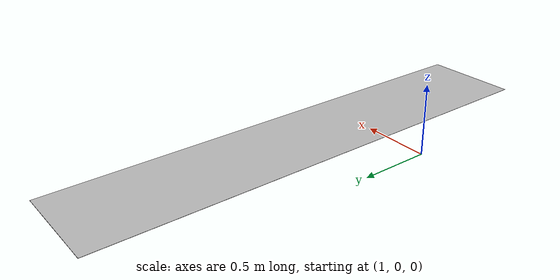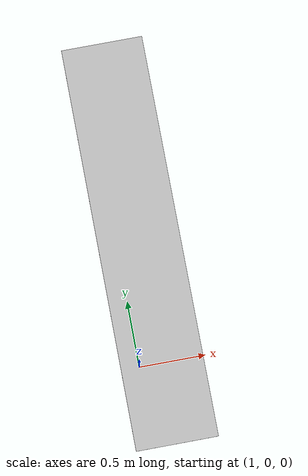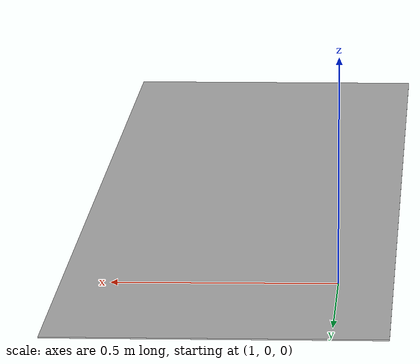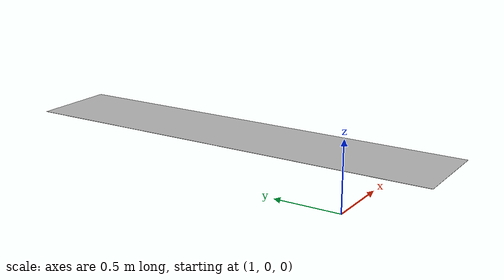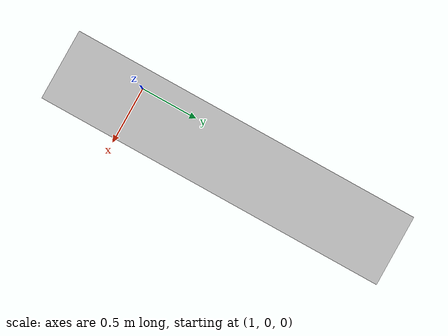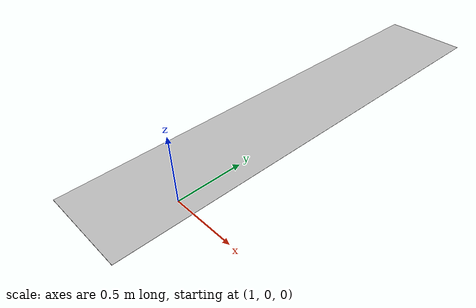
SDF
<?xml version="1.0" ?>
<sdf version="1.6">
    <model name="conveyor_belt">
      <!-- Fixed frame that can be used to refer to the belt's global pose -->
      <model name="conveyor_belt_fixed">
        <static>true</static>
        <pose>1.16 4.2 0.8 0 0 -1.57079</pose>
        <link name="link">
          <pose>0 0 0 0 0 0</pose>
        </link>
      </model>

      <!-- Moving component that extends and resets a prismatic joint -->
      <model name="conveyor_belt_moving">
        <allow_auto_disable>0</allow_auto_disable>
        <static>false</static>
        <pose>1.16 -4.12 0.35 0 0 -1.57079</pose>
        <link name="belt">
          <pose>-5 0 0 0 0 0</pose>
          <inertial>
            <inertia>
              <ixx>3.8185</ixx>
              <ixy>0</ixy>
              <ixz>0</ixz>
              <iyy>1781.5</iyy>
              <iyz>0</iyz>
              <izz>1784.72</izz>
            </inertia>
            <mass>100</mass>
          </inertial>
          <!--Uncomment for debugging -->

          <visual name="belt_visual">
            <geometry>
              <box>
                <size>3.04 0.61 0.002</size>
              </box>
            </geometry>
          </visual>

          <collision name="belt_collision">
            <geometry>
              <box>
                <size>3.04 0.61 0.002</size>
              </box>
            </geometry>
            <surface>
              <friction>
                <ode>
                  <mu>1.0</mu>
                  <mu2>1.0</mu2>
                </ode>
                <torsional>
                  <coefficient>1000.0</coefficient>
                  <patch_radius>0.1</patch_radius>
                </torsional>
              </friction>
            </surface>
          </collision>
        </link>
      </model>

      <joint name="belt_joint" type="prismatic">
        <parent>conveyor_belt_fixed::link</parent>
        <child>conveyor_belt_moving::belt</child>
        <axis>
          <xyz>1 0 0</xyz>
          <limit>
            <lower>0</lower>
            <upper>1.0</upper>
          </limit>
        </axis>
      </joint>

    </model>
</sdf>
